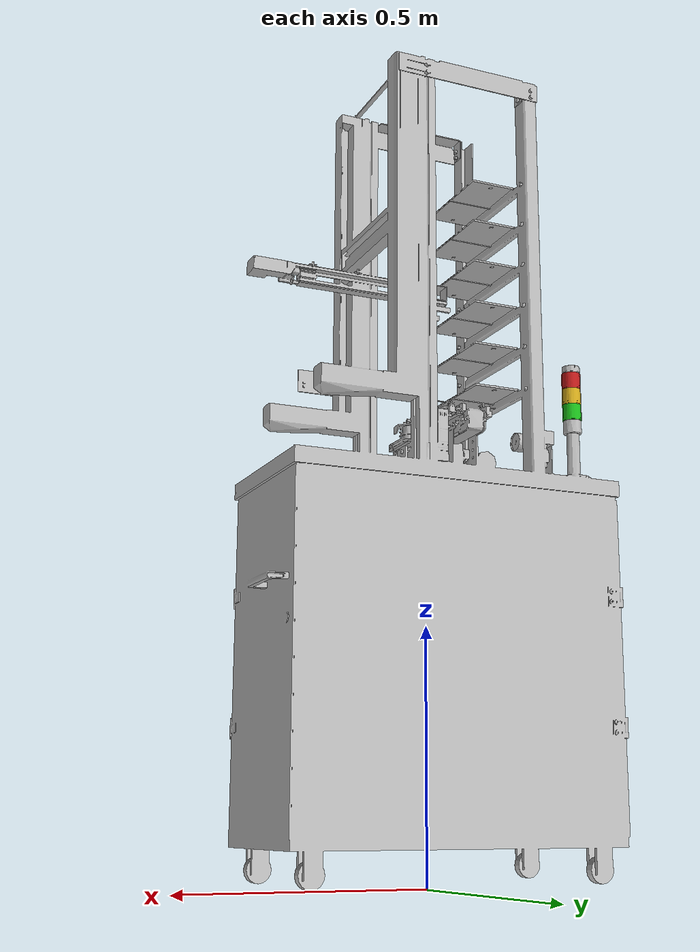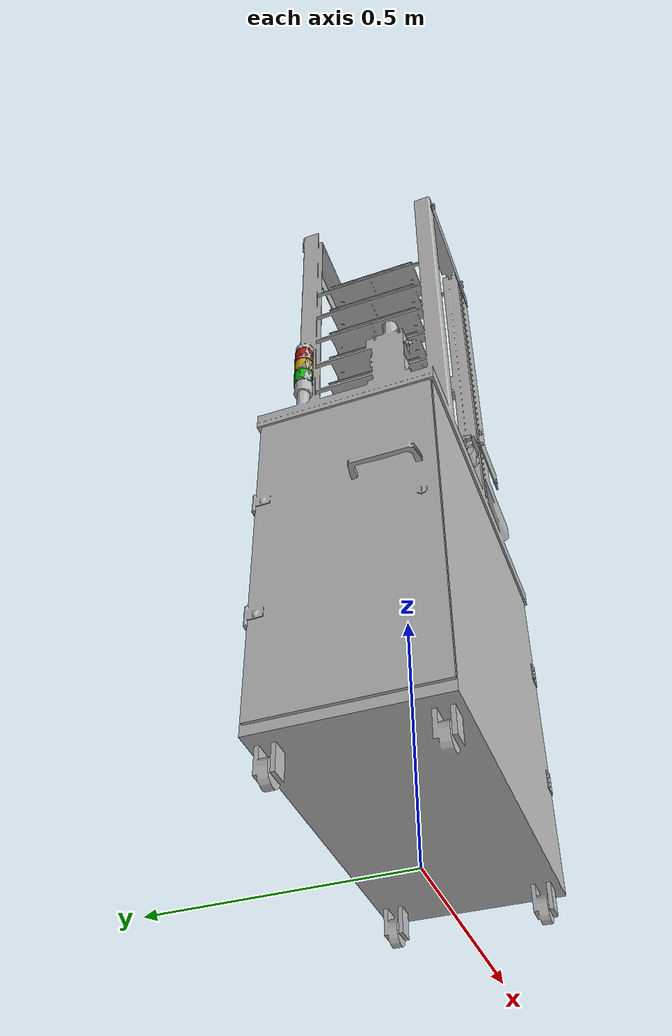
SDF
<?xml version="1.0" ?>
<sdf version="1.4">
  <model name="mps_storage">
    <static>true</static>
    <link name="body">
      <pose>0 0 0.01 0 0 3.14</pose>
      <gravity>true</gravity>
      <inertial>
	<pose>0 0 0.005 0 0 0</pose>
        <mass>50</mass>
        <inertia>
	  <!-- according to http://en.wikipedia.org/wiki/List_of_moments_of_inertia for a solid box of width: 0.35, height:0.7, depth: 0.7, mass m=30 -->
          <ixx>2.45</ixx>
          <ixy>0.0</ixy>
          <ixz>0.0</ixz>
          <iyy>1.53125</iyy>
          <iyz>0.0</iyz>
          <izz>1.53125</izz>
        </inertia>
      </inertial>
      <visual name="body-visual">
	<pose>-0.35 .172 0 0 0 1.578</pose>
        <geometry>
          <mesh>
            <uri>model://mps_storage/meshes/mps_storage.dae</uri>
          </mesh>
        </geometry>
	<material>
          <script>
            <uri>model://mps_storage/materials/scripts</uri>
            <uri>model://mps_storage/materials/textures</uri>
            <name>mps_storage</name>
          </script>
        </material>
        <cast_shadows>false</cast_shadows>
      </visual>
      <!-- Collision Elements: -->
      <collision name="puckslot0">
        <pose>.1152 0 0.97275 0 0 0</pose>
        <geometry>
          <box>
            <size>0.0985 0.2 0.002</size>
          </box>
        </geometry>
        <surface>
          <contact>
            <ode>
              <min_depth>0.01</min_depth>
            </ode>
          </contact>
        </surface>
      </collision>
      <collision name="puckslot1">
        <pose>.1152 0 1.06275 0 0 0</pose>
        <geometry>
          <box>
            <size>0.0985 0.2 0.002</size>
          </box>
        </geometry>
        <surface>
          <contact>
            <ode>
              <min_depth>0.01</min_depth>
            </ode>
          </contact>
        </surface>
      </collision>
      <collision name="puckslot2">
        <pose>.1152 0 1.15275 0 0 0</pose>
        <geometry>
          <box>
            <size>0.0985 0.2 0.002</size>
          </box>
        </geometry>
        <surface>
          <contact>
            <ode>
              <min_depth>0.01</min_depth>
            </ode>
          </contact>
        </surface>
      </collision>
      <collision name="puckslot3">
        <pose>.1152 0 1.24275 0 0 0</pose>
        <geometry>
          <box>
            <size>0.0985 0.2 0.002</size>
          </box>
        </geometry>
        <surface>
          <contact>
            <ode>
              <min_depth>0.01</min_depth>
            </ode>
          </contact>
        </surface>
      </collision>
      <collision name="puckslot4">
        <pose>.1152 0 1.33275 0 0 0</pose>
        <geometry>
          <box>
            <size>0.0985 0.2 0.002</size>
          </box>
        </geometry>
        <surface>
          <contact>
            <ode>
              <min_depth>0.01</min_depth>
            </ode>
          </contact>
        </surface>
      </collision>
      <collision name="puckslot5">
        <pose>.1152 0 1.42275 0 0 0</pose>
        <geometry>
          <box>
            <size>0.0985 0.2 0.002</size>
          </box>
        </geometry>
        <surface>
          <contact>
            <ode>
              <min_depth>0.01</min_depth>
            </ode>
          </contact>
        </surface>
      </collision>
        <collision name="collision_conveyor_belt">
        <pose>0.025 0 0.88 0 0 0 </pose>
        <geometry>
	  <box>
	    <size>0.03 0.35 0.04</size>
          </box>
        </geometry>
        <surface>
          <contact>
            <ode>
              <min_depth>0.01</min_depth>
            </ode>
          </contact>
        </surface>
      </collision>
      <collision name="collision_conveyor_belt_border_west">
        <pose>0 0 0.9 0 0 0 </pose>
        <geometry>
	  <box>
	    <size>0.01 0.35 0.02</size>
          </box>
        </geometry>
        <surface>
          <contact>
            <ode>
              <min_depth>0.01</min_depth>
            </ode>
          </contact>
        </surface>
      </collision>
      <collision name="collision_conveyor_belt_border_east">
        <pose>0.05 0 0.9 0 0 0 </pose>
        <geometry>
	  <box>
	    <size>0.01 0.35 0.02</size>
          </box>
        </geometry>
        <surface>
          <contact>
            <ode>
              <min_depth>0.01</min_depth>
            </ode>
          </contact>
        </surface>
      </collision>

      <!-- Box -->
      <collision name="collision_base_box_ground">
        <pose>0 0 0.06 0 0 0 </pose>
        <geometry>
	  <box>
	    <size>0.69 0.35 0.01</size>
          </box>
        </geometry>
        <surface>
          <contact>
            <ode>
              <min_depth>0.01</min_depth>
            </ode>
          </contact>
        </surface>
      </collision>
      <collision name="collision_base_box_wall_south">
        <pose>0 -0.175 0.42 0 0 0 </pose>
        <geometry>
	  <box>
	    <size>0.69 0.01 0.72</size>
          </box>
        </geometry>
        <surface>
          <contact>
            <ode>
              <min_depth>0.01</min_depth>
            </ode>
          </contact>
        </surface>
      </collision>
      <collision name="collision_base_box_wall_north">
        <pose>0 0.175 0.42 0 0 0 </pose>
        <geometry>
	  <box>
	    <size>0.69 0.01 0.72</size>
          </box>
        </geometry>
        <surface>
          <contact>
            <ode>
              <min_depth>0.01</min_depth>
            </ode>
          </contact>
        </surface>
      </collision>
      <!-- On both ends of the mps are transparent walls a laser sensor can look through, in the middle are solid walls -->
      <collision name="collision_base_box_wall_middle_1">
        <pose>-0.035 0 0.42 0 0 0 </pose>
        <geometry>
	  <box>
	    <size>0.01 0.35 0.72</size>
          </box>
        </geometry>
        <surface>
          <contact>
            <ode>
              <min_depth>0.01</min_depth>
            </ode>
          </contact>
        </surface>
      </collision>
      <collision name="collision_base_box_wall_middle_2">
        <pose>0.035 0 0.42 0 0 0 </pose>
        <geometry>
	  <box>
	    <size>0.01 0.35 0.72</size>
          </box>
        </geometry>
        <surface>
          <contact>
            <ode>
              <min_depth>0.01</min_depth>
            </ode>
          </contact>
        </surface>
      </collision>
      <collision name="collision_base_box_top">
        <pose>0 0 0.78 0 0 0 </pose>
        <geometry>
	  <box>
	    <size>0.69 0.35 0.01</size>
          </box>
        </geometry>
        <surface>
          <contact>
            <ode>
              <min_depth>0.01</min_depth>
            </ode>
          </contact>
        </surface>
      </collision>
      <collision name="collision_wheels">
	<!-- Collision to avoid that the box falls down (In reality done by wheels) -->
        <pose>0 0 0.01 0 0 0 </pose>
        <geometry>
	  <box>
	    <size>0.69 0.35 0.02</size>
          </box>
        </geometry>
        <surface>
          <contact>
            <ode>
              <min_depth>0.01</min_depth>
            </ode>
          </contact>
        </surface>
      </collision>
    </link>

    <include>
      <name>light_signals</name>
      <uri>model://light_signals</uri>
      <pose>-0.286 0.11 0.93 0 0 0</pose>
    </include>

    <link name="mps_tag_output">
      <pose>0.025 -0.175 0.54 0 0 -1.57</pose>
    </link>
    <link name="mps_tag_input">
      <pose>0.025 0.175 0.54 0 0 1.57</pose>
    </link>

    <joint name="mps_light_joint" type="revolute">
      <parent>body</parent>
      <child>light_signals::link</child>
      <axis>
        <limit>
          <lower>0</lower>
          <upper>0</upper>
        </limit>
        <xyz>0 0 1</xyz>
      </axis>
    </joint>

    <!-- Plugin to control the MPS and detect workpieces -->
    <plugin name="MPS" filename="libmps.so"/>
  </model>
</sdf>

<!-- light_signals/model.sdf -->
<sdf version="1.4">
  <model name="light_signal">
    <!-- The center is the bottom of the green light -->
    <pose>0 0 0.915 0 0 0 </pose>
    <static>true</static>
    <link name="link">
      <visual name="redon">
        <pose>0 0 0.085 0 0 0 </pose>
	<cast_shadows>false</cast_shadows>
        <geometry>
          <cylinder>
	    <radius>0.0195</radius>
	    <length>0.034</length>
          </cylinder>
        </geometry>
	<material>
	  <ambient>0.8 0 0 0.8</ambient>
	  <diffuse>0.8 0.0 0.0 0.8</diffuse>
	  <emissive>1.0 0.3 0.3 1.0</emissive>
	</material>
      </visual>
      <visual name="yellowon">
        <pose>0 0 0.051 0 0 0 </pose>
	<cast_shadows>false</cast_shadows>
        <geometry>
          <cylinder>
	    <radius>0.0195</radius>
	    <length>0.034</length>
          </cylinder>
        </geometry>
	<material>
	  <ambient>0.9 0.7 0 0.8</ambient>
	  <diffuse>0.9 0.7 0.0 0.8</diffuse>
	  <emissive>1.0 0.9 0.3 1.0</emissive>
	</material>
      </visual>
      <visual name="greenon">
        <pose>0 0 0.017 0 0 0 </pose>
	<cast_shadows>false</cast_shadows>
        <geometry>
          <cylinder>
	    <radius>0.0195</radius>
	    <length>0.034</length>
          </cylinder>
        </geometry>
	<material>
	  <ambient>0.0 0.8 0 0.8</ambient>
	  <diffuse>0.0 0.8 0.0 0.8</diffuse>
	  <emissive>0.3 1.0 0.3 1.0</emissive>
	</material>
     </visual>
    </link>

    <!-- Plugin to control the light signal -->
    <plugin name="MPS" filename="liblight_control.so"/>
  </model>
</sdf>
